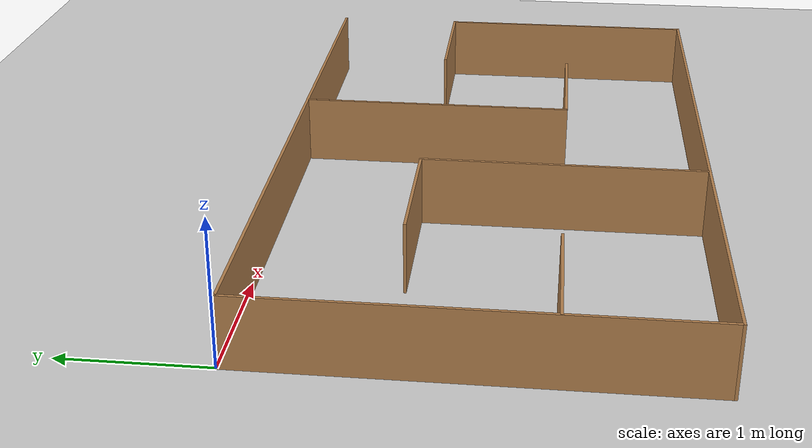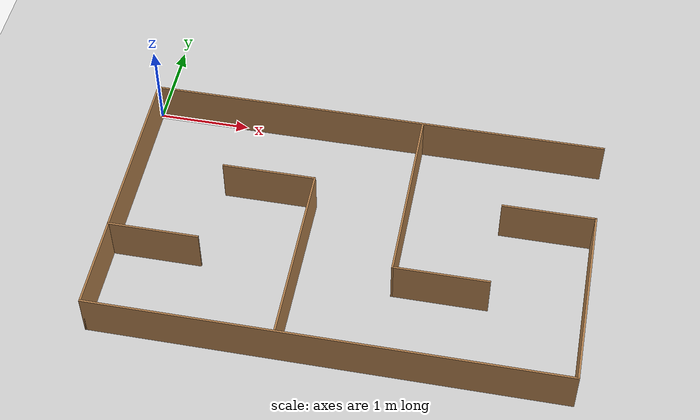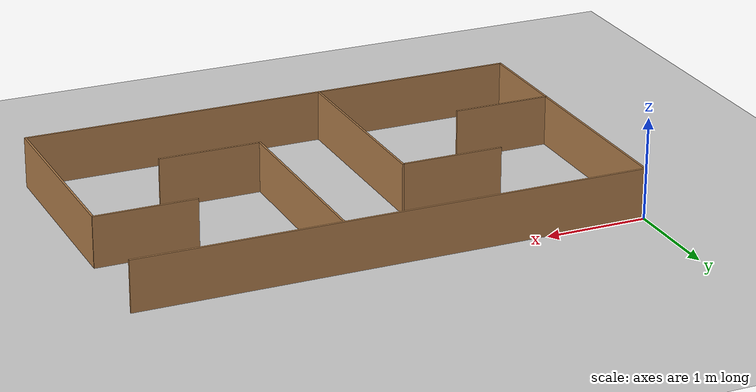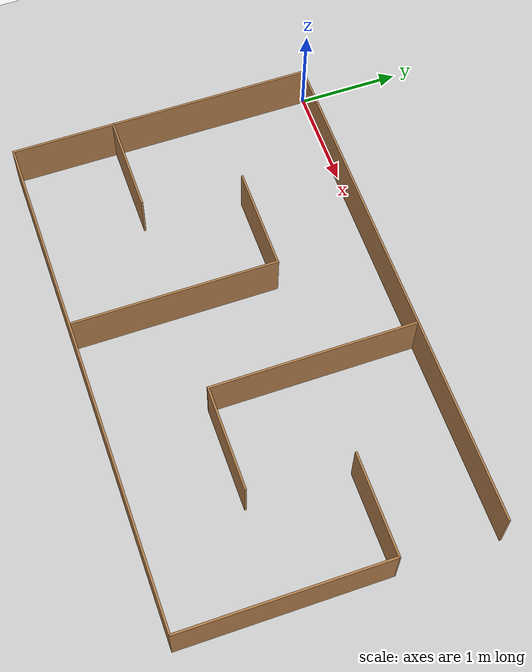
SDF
<sdf version="1.6">
 <world name="default">
  <light name="sun" type="directional">
   <pose>0 0 10 0 -0 0</pose>
   <diffuse>0.8 0.8 0.8 1</diffuse>
   <specular>0.2 0.2 0.2 1</specular>
   <attenuation>
    <range>1000</range>
    <constant>0.9</constant>
    <linear>0.01</linear>
    <quadratic>0.001</quadratic>
   </attenuation>
   <direction>-0.5 0.1 -0.9</direction>
  </light>
  <model name="ground_plane">
   <static>1</static>
   <link name="link">
    <collision name="collision">
     <geometry><plane><normal>0 0 1</normal><size>100 100</size></plane></geometry>
     <surface>
      <contact><collide_bitmask>65535</collide_bitmask></contact>
      <friction><ode><mu>100</mu><mu2>50</mu2></ode></friction>
     </surface>
    </collision>
    <visual name="visual">
     <cast_shadows>0</cast_shadows>
     <geometry><plane><normal>0 0 1</normal><size>100 100</size></plane></geometry>
     <material>
      <script><uri>file://media/materials/scripts/gazebo.material</uri><name>Gazebo/Grey</name></script>
     </material>
    </visual>
   </link>
  </model>
  <gravity>0 0 -9.8</gravity>
  <magnetic_field>6e-06 2.3e-05 -4.2e-05</magnetic_field>
  <atmosphere type="adiabatic"/>
  <physics name="default_physics" default="0" type="ode">
   <max_step_size>0.001</max_step_size>
   <real_time_factor>1</real_time_factor>
   <real_time_update_rate>1000</real_time_update_rate>
  </physics>
  <scene><ambient>0.4 0.4 0.4 1</ambient><background>0.7 0.7 0.7 1</background><shadows>1</shadows></scene>
  <audio><device>default</device></audio>
  <spherical_coordinates>
   <surface_model>EARTH_WGS84</surface_model>
   <latitude_deg>0</latitude_deg>
   <longitude_deg>0</longitude_deg>
   <elevation>0</elevation>
   <heading_deg>0</heading_deg>
  </spherical_coordinates>
  <model name="exp_01">
   <pose>2.49185 -1.50873 0 0 -0 0</pose>
   <link name="Wall_0">
    <collision name="Wall_0_Collision">
     <geometry><box><size>5 0.02 0.5</size></box></geometry>
     <pose>0 0 0.25 0 -0 0</pose>
    </collision>
    <visual name="Wall_0_Visual">
     <pose>0 0 0.25 0 -0 0</pose>
     <geometry><box><size>5 0.02 0.5</size></box></geometry>
     <material>
      <script><uri>file://media/materials/scripts/gazebo.material</uri><name>Gazebo/Wood</name></script>
      <ambient>1 1 1 1</ambient>
     </material>
     <meta><layer>0</layer></meta>
    </visual>
    <pose>0 -1.49 0 0 -0 0</pose>
   </link>
   <link name="Wall_10">
    <collision name="Wall_10_Collision">
     <geometry><box><size>2 0.02 0.5</size></box></geometry>
     <pose>0 0 0.25 0 -0 0</pose>
    </collision>
    <visual name="Wall_10_Visual">
     <pose>0 0 0.25 0 -0 0</pose>
     <geometry><box><size>2 0.02 0.5</size></box></geometry>
     <material>
      <script><uri>file://media/materials/scripts/gazebo.material</uri><name>Gazebo/Wood</name></script>
      <ambient>1 1 1 1</ambient>
     </material>
     <meta><layer>0</layer></meta>
    </visual>
    <pose>-0.502337 -0.484421 0 0 -0 1.5708</pose>
   </link>
   <link name="Wall_12">
    <collision name="Wall_12_Collision">
     <geometry><box><size>1 0.02 0.5</size></box></geometry>
     <pose>0 0 0.25 0 -0 0</pose>
    </collision>
    <visual name="Wall_12_Visual">
     <pose>0 0 0.25 0 -0 0</pose>
     <geometry><box><size>1 0.02 0.5</size></box></geometry>
     <material>
      <script><uri>file://media/materials/scripts/gazebo.material</uri><name>Gazebo/Wood</name></script>
      <ambient>1 1 1 1</ambient>
     </material>
     <meta><layer>0</layer></meta>
    </visual>
    <pose>-1.00821 0.505376 0 0 -0 0</pose>
   </link>
   <link name="Wall_14">
    <collision name="Wall_14_Collision">
     <geometry><box><size>2 0.02 0.5</size></box></geometry>
     <pose>0 0 0.25 0 -0 0</pose>
    </collision>
    <visual name="Wall_14_Visual">
     <pose>0 0 0.25 0 -0 0</pose>
     <geometry><box><size>2 0.02 0.5</size></box></geometry>
     <material>
      <script><uri>file://media/materials/scripts/gazebo.material</uri><name>Gazebo/Wood</name></script>
      <ambient>1 1 1 1</ambient>
     </material>
     <meta><layer>0</layer></meta>
    </visual>
    <pose>0.508827 0.483477 0 0 -0 -1.5708</pose>
   </link>
   <link name="Wall_16">
    <collision name="Wall_16_Collision">
     <geometry><box><size>1 0.02 0.5</size></box></geometry>
     <pose>0 0 0.25 0 -0 0</pose>
    </collision>
    <visual name="Wall_16_Visual">
     <pose>0 0 0.25 0 -0 0</pose>
     <geometry><box><size>1 0.02 0.5</size></box></geometry>
     <material>
      <script><uri>file://media/materials/scripts/gazebo.material</uri><name>Gazebo/Wood</name></script>
      <ambient>1 1 1 1</ambient>
     </material>
     <meta><layer>0</layer></meta>
    </visual>
    <pose>1.0154 -0.5065 0 0 -0 0</pose>
   </link>
   <link name="Wall_18">
    <collision name="Wall_18_Collision">
     <geometry><box><size>1 0.02 0.5</size></box></geometry>
     <pose>0 0 0.25 0 -0 0</pose>
    </collision>
    <visual name="Wall_18_Visual">
     <pose>0 0 0.25 0 -0 0</pose>
     <geometry><box><size>1 0.02 0.5</size></box></geometry>
     <material>
      <script><uri>file://media/materials/scripts/gazebo.material</uri><name>Gazebo/Wood</name></script>
      <ambient>1 1 1 1</ambient>
     </material>
     <meta><layer>0</layer></meta>
    </visual>
    <pose>1.99945 0.500978 0 0 -0 0</pose>
   </link>
   <link name="Wall_2">
    <collision name="Wall_2_Collision">
     <geometry><box><size>3 0.02 0.5</size></box></geometry>
     <pose>0 0 0.25 0 -0 0</pose>
    </collision>
    <visual name="Wall_2_Visual">
     <pose>0 0 0.25 0 -0 0</pose>
     <geometry><box><size>3 0.02 0.5</size></box></geometry>
     <material>
      <script><uri>file://media/materials/scripts/gazebo.material</uri><name>Gazebo/Wood</name></script>
      <ambient>1 1 1 1</ambient>
     </material>
     <meta><layer>0</layer></meta>
    </visual>
    <pose>-2.49 0 0 0 -0 1.5708</pose>
   </link>
   <link name="Wall_4">
    <collision name="Wall_4_Collision">
     <geometry><box><size>5 0.02 0.5</size></box></geometry>
     <pose>0 0 0.25 0 -0 0</pose>
    </collision>
    <visual name="Wall_4_Visual">
     <pose>0 0 0.25 0 -0 0</pose>
     <geometry><box><size>5 0.02 0.5</size></box></geometry>
     <material>
      <script><uri>file://media/materials/scripts/gazebo.material</uri><name>Gazebo/Wood</name></script>
      <ambient>1 1 1 1</ambient>
     </material>
     <meta><layer>0</layer></meta>
    </visual>
    <pose>0 1.49 0 0 -0 0</pose>
   </link>
   <link name="Wall_6">
    <collision name="Wall_6_Collision">
     <geometry><box><size>2 0.02 0.5</size></box></geometry>
     <pose>0 0 0.25 0 -0 0</pose>
    </collision>
    <visual name="Wall_6_Visual">
     <pose>0 0 0.25 0 -0 0</pose>
     <geometry><box><size>2 0.02 0.5</size></box></geometry>
     <material>
      <script><uri>file://media/materials/scripts/gazebo.material</uri><name>Gazebo/Wood</name></script>
      <ambient>1 1 1 1</ambient>
     </material>
     <meta><layer>0</layer></meta>
    </visual>
    <pose>2.49 -0.5 0 0 -0 1.5708</pose>
   </link>
   <link name="Wall_8">
    <collision name="Wall_8_Collision">
     <geometry><box><size>0.97 0.02 0.5</size></box></geometry>
     <pose>0 0 0.25 0 -0 0</pose>
    </collision>
    <visual name="Wall_8_Visual">
     <pose>0 0 0.25 0 -0 0</pose>
     <geometry><box><size>0.97 0.02 0.5</size></box></geometry>
     <material>
      <script><uri>file://media/materials/scripts/gazebo.material</uri><name>Gazebo/Wood</name></script>
      <ambient>1 1 1 1</ambient>
     </material>
     <meta><layer>0</layer></meta>
    </visual>
    <pose>-2.01106 -0.488472 0 0 -0 3.14159</pose>
   </link>
   <static>1</static>
  </model>
 </world>
</sdf>
